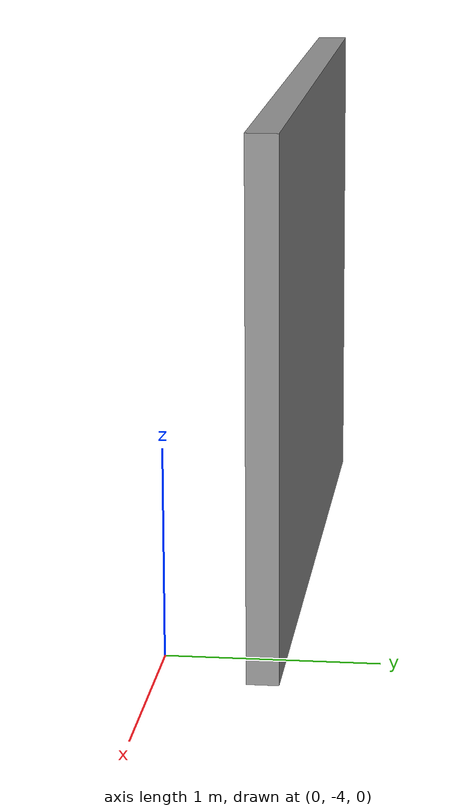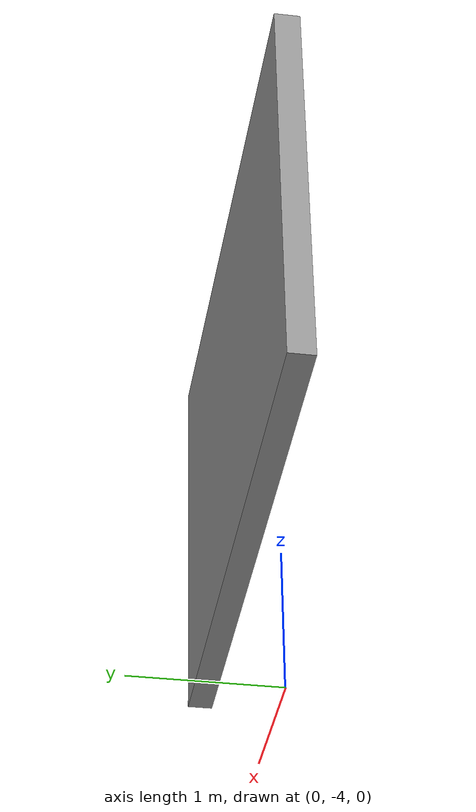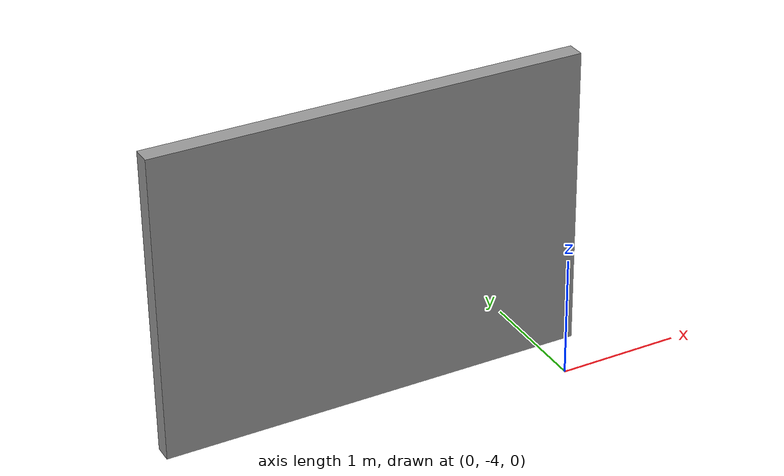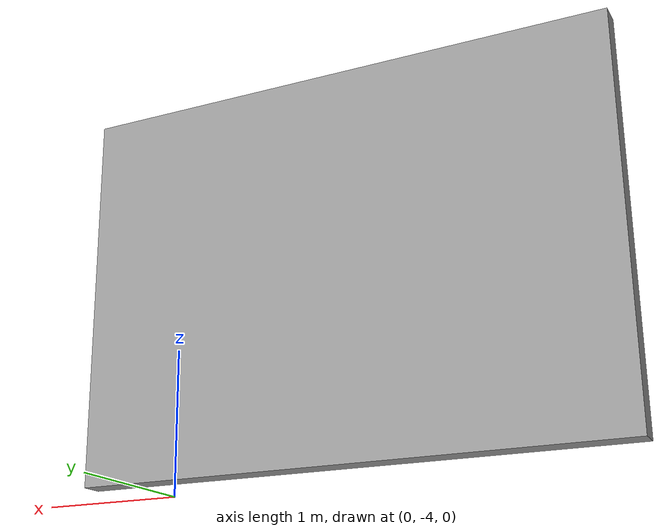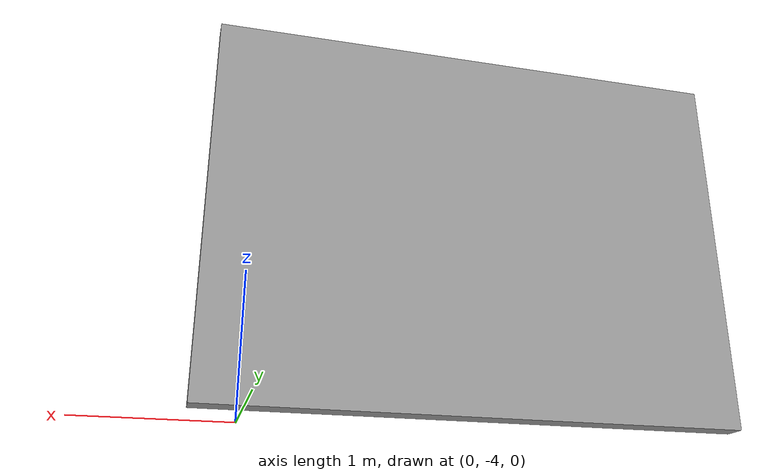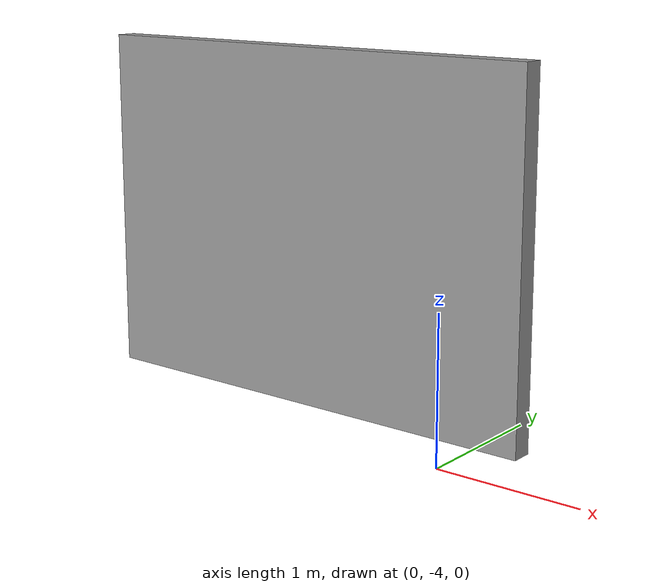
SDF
<?xml version='1.0'?>
<sdf version='1.7'>
  <model name='three_m_wall'>
    <pose>-1.435 -1.7925 0 0 -0 0</pose>
    <link name='Wall_0'>
      <collision name='Wall_0_Collision'>
        <geometry>
          <box>
            <size>3.5 0.15 2.5</size>
          </box>
        </geometry>
        <pose>0 0 1.25 0 -0 0</pose>
      </collision>
      <visual name='Wall_0_Visual'>
        <pose>0 0 1.25 0 -0 0</pose>
        <geometry>
          <box>
            <size>3.5 0.15 2.5</size>
          </box>
        </geometry>
        <material>
          <script>
            <uri>file://media/materials/scripts/gazebo.material</uri>
            <name>Gazebo/Grey</name>
          </script>
          <ambient>1 1 1 1</ambient>
        </material>
        <meta>
          <layer>0</layer>
        </meta>
      </visual>
      <pose>0 -1.7175 0 0 -0 0</pose>
    </link>
    <static>1</static>
  </model>
</sdf>
